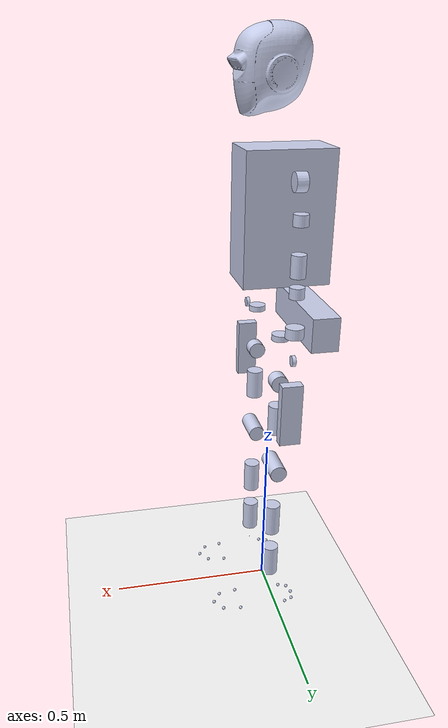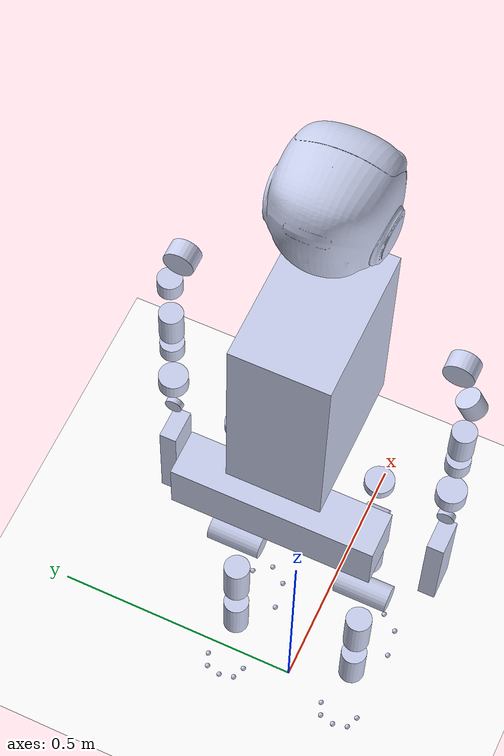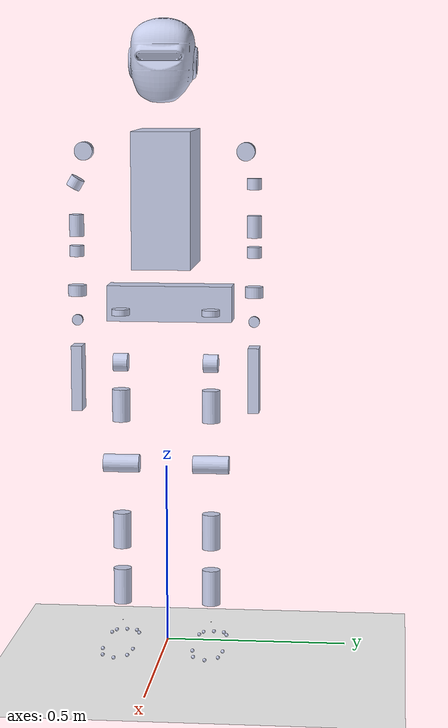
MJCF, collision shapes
<mujoco model="Q1_wo_hand">
  <compiler angle="radian" meshdir="../meshes/"/>
  <default>
    <joint damping="0.001" armature="0.01" frictionloss="0.1"/>
    <default class="collision">
      <geom group="0" rgba="0.2 0.7 0.2 1"/>
    </default>
    <geom condim='4' contype="1" conaffinity="15" solref='0.001 2' friction='1 0 0'/>
  </default>
  <asset>
    <mesh name="pelvis_link" file="pelvis_link.STL"/>
    <mesh name="L_hip_roll_link" file="L_hip_roll_link.STL"/>
    <mesh name="L_hip_yaw_link" file="L_hip_yaw_link.STL"/>
    <mesh name="L_hip_pitch_link" file="L_hip_pitch_link.STL"/>
    <mesh name="L_knee_link" file="L_knee_link.STL"/>
    <mesh name="L_ankle_pitch_link" file="L_ankle_pitch_link.STL"/>
    <mesh name="L_ankle_roll_link" file="L_ankle_roll_link.STL"/>
    <mesh name="R_hip_roll_link" file="R_hip_roll_link.STL"/>
    <mesh name="R_hip_yaw_link" file="R_hip_yaw_link.STL"/>
    <mesh name="R_hip_pitch_link" file="R_hip_pitch_link.STL"/>
    <mesh name="R_knee_link" file="R_knee_link.STL"/>
    <mesh name="R_ankle_pitch_link" file="R_ankle_pitch_link.STL"/>
    <mesh name="R_ankle_roll_link" file="R_ankle_roll_link.STL"/>
    <mesh name="torso_link" file="torso_link.STL"/>
    <mesh name="L_shoulder_pitch_link" file="L_shoulder_pitch_link.STL"/>
    <mesh name="L_shoulder_roll_link" file="L_shoulder_roll_link.STL"/>
    <mesh name="L_shoulder_yaw_link" file="L_shoulder_yaw_link.STL"/>
    <mesh name="L_elbow_link" file="L_elbow_link.STL"/>
    <mesh name="L_forearm_yaw_link" file="L_forearm_yaw_link.STL"/>
    <mesh name="L_wrist_roll_link" file="L_wrist_roll_link.STL"/>
    <mesh name="L_wrist_pitch_link" file="L_wrist_pitch_link.STL"/>
    <mesh name="R_shoulder_pitch_link" file="R_shoulder_pitch_link.STL"/>
    <mesh name="R_shoulder_roll_link" file="R_shoulder_roll_link.STL"/>
    <mesh name="R_shoulder_yaw_link" file="R_shoulder_yaw_link.STL"/>
    <mesh name="R_elbow_link" file="R_elbow_link.STL"/>
    <mesh name="R_forearm_yaw_link" file="R_forearm_yaw_link.STL"/>
    <mesh name="R_wrist_roll_link" file="R_wrist_roll_link.STL"/>
    <mesh name="R_wrist_pitch_link" file="R_wrist_pitch_link.STL"/>
    <mesh name="head_yaw_link" file="head_yaw_link.STL"/>
    <mesh name="head_pitch_link" file="head_pitch_link.STL"/>
  </asset>

  <worldbody>
    <body name="pelvis_link" pos="0 0 0.9968">
      <inertial pos="-0.072571 3.48e-05 -0.055339" quat="0.427329 0.427494 -0.563171 0.563451" mass="8.1798" diaginertia="0.123181 0.103859 0.039797"/>
      <joint name="floating_base_joint" type="free" limited="false" actuatorfrclimited="false"/>
      <geom type="mesh" contype="0" conaffinity="0" group="1" density="0" rgba="0.79216 0.81961 0.93333 1" mesh="pelvis_link"/>
      <geom size="0.04 0.175 0.05" pos="-0.1 0 -0.05" type="box" rgba="0.79216 0.81961 0.93333 1"/>
      <site name="imu" size="0.01" pos="0 0.03 0.2"/>
      <body name="L_hip_roll_link" pos="0.0154 0.125 -0.062997">
        <inertial pos="-0.021809 2.71e-05 0.0049398" quat="-0.00147974 0.685188 -0.00133567 0.728364" mass="1.6267" diaginertia="0.00365822 0.00293049 0.00199039"/>
        <joint name="L_hip_roll_joint" pos="0 0 0" axis="1 0 0" range="-0.2 0.83" actuatorfrcrange="-130 130"/>
        <geom type="mesh" contype="0" conaffinity="0" group="1" density="0" rgba="0.79216 0.81961 0.93333 1" mesh="L_hip_roll_link"/>
        <geom size="0.025 0.0085" type="cylinder" rgba="0.79216 0.81961 0.93333 1"/>
        <body name="L_hip_yaw_link">
          <inertial pos="-0.0005026 -0.0012996 -0.127531" quat="0.706579 -0.0150269 -0.00857499 0.707423" mass="3.6555" diaginertia="0.0142824 0.0121041 0.00825861"/>
          <joint name="L_hip_yaw_joint" pos="0 0 0" axis="0 0 1" range="-0.78 0.78" actuatorfrcrange="-55 55"/>
          <geom type="mesh" contype="0" conaffinity="0" group="1" density="0" rgba="0.79216 0.81961 0.93333 1" mesh="L_hip_yaw_link"/>
          <geom size="0.025 0.02" pos="0 0 -0.14" quat="0.707107 0.707107 0 0" type="cylinder" rgba="0.79216 0.81961 0.93333 1"/>
          <body name="L_hip_pitch_link" pos="0 0 -0.14">
            <inertial pos="0.0103597 0.0011742 -0.135987" quat="0.99972 -0.000456049 -0.0185207 -0.0146979" mass="2.09124" diaginertia="0.0346407 0.0332836 0.00887344"/>
            <joint name="L_hip_pitch_joint" pos="0 0 0" axis="0 1 0" range="-0.89 1.64" actuatorfrcrange="-130 130"/>
            <geom type="mesh" contype="0" conaffinity="0" group="1" density="0" rgba="0.79216 0.81961 0.93333 1" mesh="L_hip_pitch_link"/>
            <geom size="0.025 0.045" pos="0 0 -0.12" type="cylinder" rgba="0.79216 0.81961 0.93333 1"/>
            <body name="L_knee_link" pos="0 0 -0.28502">
              <inertial pos="-0.0003397 0.0004209 -0.127168" quat="0.711774 0.0114952 0.0102471 0.702239" mass="7.50021" diaginertia="0.131416 0.126317 0.0154493"/>
              <joint name="L_knee_joint" pos="0 0 0" axis="0 1 0" range="-0.1 2.3" actuatorfrcrange="-130 130"/>
              <geom type="mesh" contype="0" conaffinity="0" group="1" density="0" rgba="0.79216 0.81961 0.93333 1" mesh="L_knee_link"/>
              <geom size="0.025 0.05" pos="0 0 -0.19" type="cylinder" rgba="0.79216 0.81961 0.93333 1"/>
              <geom size="0.025 0.05" pos="0 0 -0.35" type="cylinder" rgba="0.79216 0.81961 0.93333 1"/>
              <geom size="0.025 0.05" quat="0.707107 0.707107 0 0" type="cylinder" rgba="0.79216 0.81961 0.93333 1"/>
              <body name="L_ankle_pitch_link" pos="0 0 -0.452">
                <inertial pos="-5.11e-05 0 -0.002907" quat="0.707107 0 0 0.707107" mass="0.046" diaginertia="3.9073e-06 3.5529e-06 3.3922e-06"/>
                <joint name="L_ankle_pitch_joint" pos="0 0 0" axis="0 1 0" range="-0.52 0.87" actuatorfrcrange="-66 66"/>
                <geom type="mesh" contype="0" conaffinity="0" group="1" density="0" rgba="0.64706 0.61961 0.58824 1" mesh="L_ankle_pitch_link"/>
                <geom size="0.001 0.0005" type="cylinder" rgba="0.64706 0.61961 0.58824 1"/>
                <body name="L_ankle_roll_link">
                  <inertial pos="0.031127 1.94e-05 -0.03235" quat="-0.000446724 0.749856 -0.000747754 0.661601" mass="0.96277" diaginertia="0.00584802 0.0056095 0.000716878"/>
                  <joint name="L_ankle_roll_joint" pos="0 0 0" axis="1 0 0" range="-0.4363 0.4363" actuatorfrcrange="-66 66"/>
                  <geom type="mesh" contype="0" conaffinity="0" group="1" density="0" rgba="0.79216 0.81961 0.93333 1" mesh="L_ankle_roll_link"/>
                  <geom size="0.005" pos="-0.072 0.029 -0.0517" rgba="0.79216 0.81961 0.93333 1"/>
                  <geom size="0.005" pos="-0.072 -0.029 -0.0517" rgba="0.79216 0.81961 0.93333 1"/>
                  <geom size="0.005" pos="-0.047 0.039 -0.0517" rgba="0.79216 0.81961 0.93333 1"/>
                  <geom size="0.005" pos="-0.047 -0.039 -0.0517" rgba="0.79216 0.81961 0.93333 1"/>
                  <geom size="0.005" pos="-0.079 0 -0.0517" rgba="0.79216 0.81961 0.93333 1"/>
                  <geom size="0.005" pos="0.103 0.042 -0.0517" rgba="0.79216 0.81961 0.93333 1"/>
                  <geom size="0.005" pos="0.103 -0.042 -0.0517" rgba="0.79216 0.81961 0.93333 1"/>
                  <geom size="0.005" pos="0.158 0.034 -0.0517" rgba="0.79216 0.81961 0.93333 1"/>
                  <geom size="0.005" pos="0.158 -0.034 -0.0517" rgba="0.79216 0.81961 0.93333 1"/>
                  <geom size="0.005" pos="0.183 0 -0.0517" rgba="0.79216 0.81961 0.93333 1"/>
                </body>
              </body>
            </body>
          </body>
        </body>
      </body>
      <body name="R_hip_roll_link" pos="0.0154 -0.125 -0.062997">
        <inertial pos="-0.021809 -2.71e-05 0.0049398" quat="0.00147974 0.685188 0.00133567 0.728364" mass="1.6267" diaginertia="0.00365822 0.00293049 0.00199039"/>
        <joint name="R_hip_roll_joint" pos="0 0 0" axis="1 0 0" range="-0.83 0.2" actuatorfrcrange="-130 130"/>
        <geom type="mesh" contype="0" conaffinity="0" group="1" density="0" rgba="0.79216 0.81961 0.93333 1" mesh="R_hip_roll_link"/>
        <geom size="0.025 0.0085" type="cylinder" rgba="0.79216 0.81961 0.93333 1"/>
        <body name="R_hip_yaw_link">
          <inertial pos="-0.0005022 0.0012999 -0.127531" quat="0.707423 -0.00857104 -0.0150113 0.706579" mass="3.65546" diaginertia="0.0142822 0.0121042 0.00825852"/>
          <joint name="R_hip_yaw_joint" pos="0 0 0" axis="0 0 1" range="-0.78 0.78" actuatorfrcrange="-55 55"/>
          <geom type="mesh" contype="0" conaffinity="0" group="1" density="0" rgba="0.79216 0.81961 0.93333 1" mesh="R_hip_yaw_link"/>
          <geom size="0.025 0.02" pos="0 0 -0.14" quat="0.707107 0.707107 0 0" type="cylinder" rgba="0.79216 0.81961 0.93333 1"/>
          <body name="R_hip_pitch_link" pos="0 0 -0.14">
            <inertial pos="0.0103759 -0.0011406 -0.135926" quat="0.999737 0.00046452 -0.0184164 0.0136618" mass="2.09223" diaginertia="0.0346458 0.0332859 0.00887523"/>
            <joint name="R_hip_pitch_joint" pos="0 0 0" axis="0 1 0" range="-0.89 1.64" actuatorfrcrange="-130 130"/>
            <geom type="mesh" contype="0" conaffinity="0" group="1" density="0" rgba="0.79216 0.81961 0.93333 1" mesh="R_hip_pitch_link"/>
            <geom size="0.025 0.045" pos="0 0 -0.12" type="cylinder" rgba="0.79216 0.81961 0.93333 1"/>
            <body name="R_knee_link" pos="0 0 -0.28502">
              <inertial pos="-0.0003539 -0.0004116 -0.127174" quat="0.702392 0.0102481 0.0114683 0.711624" mass="7.50218" diaginertia="0.131434 0.126331 0.0154608"/>
              <joint name="R_knee_joint" pos="0 0 0" axis="0 1 0" range="-0.1 2.3" actuatorfrcrange="-130 130"/>
              <geom type="mesh" contype="0" conaffinity="0" group="1" density="0" rgba="0.79216 0.81961 0.93333 1" mesh="R_knee_link"/>
              <geom size="0.025 0.05" pos="0 0 -0.19" type="cylinder" rgba="0.79216 0.81961 0.93333 1"/>
              <geom size="0.025 0.05" pos="0 0 -0.35" type="cylinder" rgba="0.79216 0.81961 0.93333 1"/>
              <geom size="0.025 0.05" quat="0.707107 0.707107 0 0" type="cylinder" rgba="0.79216 0.81961 0.93333 1"/>
              <body name="R_ankle_pitch_link" pos="0 0 -0.452">
                <inertial pos="-5.1137e-05 0 -0.002907" quat="0.707107 0 0 0.707107" mass="0.046143" diaginertia="3.9072e-06 3.5529e-06 3.3922e-06"/>
                <joint name="R_ankle_pitch_joint" pos="0 0 0" axis="0 1 0" range="-0.52 0.87" actuatorfrcrange="-66 66"/>
                <geom type="mesh" contype="0" conaffinity="0" group="1" density="0" rgba="0.79216 0.81961 0.93333 1" mesh="R_ankle_pitch_link"/>
                <geom size="0.001 0.0005" type="cylinder" rgba="0.79216 0.81961 0.93333 1"/>
                <body name="R_ankle_roll_link">
                  <inertial pos="0.031113 -1.04e-05 -0.032346" quat="0.000459898 0.749836 0.000841181 0.661623" mass="0.96254" diaginertia="0.00584765 0.0056094 0.000716553"/>
                  <joint name="R_ankle_roll_joint" pos="0 0 0" axis="1 0 0" range="-0.4363 0.4363" actuatorfrcrange="-66 66"/>
                  <geom type="mesh" contype="0" conaffinity="0" group="1" density="0" rgba="0.79216 0.81961 0.93333 1" mesh="R_ankle_roll_link"/>
                  <geom size="0.005" pos="-0.072 0.029 -0.0517" rgba="0.79216 0.81961 0.93333 1"/>
                  <geom size="0.005" pos="-0.072 -0.029 -0.0517" rgba="0.79216 0.81961 0.93333 1"/>
                  <geom size="0.005" pos="-0.047 0.039 -0.0517" rgba="0.79216 0.81961 0.93333 1"/>
                  <geom size="0.005" pos="-0.047 -0.039 -0.0517" rgba="0.79216 0.81961 0.93333 1"/>
                  <geom size="0.005" pos="-0.079 0 -0.0517" rgba="0.79216 0.81961 0.93333 1"/>
                  <geom size="0.005" pos="0.103 0.042 -0.0517" rgba="0.79216 0.81961 0.93333 1"/>
                  <geom size="0.005" pos="0.103 -0.042 -0.0517" rgba="0.79216 0.81961 0.93333 1"/>
                  <geom size="0.005" pos="0.158 0.034 -0.0517" rgba="0.79216 0.81961 0.93333 1"/>
                  <geom size="0.005" pos="0.158 -0.034 -0.0517" rgba="0.79216 0.81961 0.93333 1"/>
                  <geom size="0.005" pos="0.183 0 -0.0517" rgba="0.79216 0.81961 0.93333 1"/>
                </body>
              </body>
            </body>
          </body>
        </body>
      </body>
      <body name="torso_link">
        <inertial pos="0.0067502 -0.0038791 0.241647" quat="0.997554 -0.00823724 -0.0136537 0.0680612" mass="19.21" diaginertia="0.361456 0.338674 0.168684"/>
        <joint name="pelvis_joint" pos="0 0 0" axis="0 0 1" range="-1.04 1.04" actuatorfrcrange="-130 130"/>
        <geom type="mesh" contype="0" conaffinity="0" group="1" density="0" rgba="0.79216 0.81961 0.93333 1" mesh="torso_link"/>
        <geom size="0.125 0.08 0.185" pos="-0.01 0 0.25" type="box" rgba="0.79216 0.81961 0.93333 1"/>
        <body name="L_shoulder_pitch_link" pos="0.015442 0.22168 0.37829" quat="0.991445 0.130526 0 0">
          <inertial pos="0.0034819 -0.0052797 1.47e-05" quat="0.706437 0.707251 -0.0191228 -0.0194401" mass="1.35" diaginertia="0.00161569 0.0014304 0.00125011"/>
          <joint name="L_shoulder_pitch_joint" pos="0 0 0" axis="0 1 0" range="-1.48 1.48" actuatorfrcrange="-42 42"/>
          <geom type="mesh" contype="0" conaffinity="0" group="1" density="0" rgba="0.79216 0.81961 0.93333 1" mesh="L_shoulder_pitch_link"/>
          <geom size="0.025 0.015" quat="0.5 0.5 0.5 0.5" type="cylinder" rgba="0.79216 0.81961 0.93333 1"/>
          <body name="L_shoulder_roll_link">
            <inertial pos="0.0001178 0.0018666 -0.056296" quat="0.706855 0.0171153 0.00843154 0.707102" mass="0.55" diaginertia="0.00187871 0.00149694 0.00116175"/>
            <joint name="L_shoulder_roll_joint" pos="0 0 0" axis="1 0 0" range="-0.12 3.17" actuatorfrcrange="-42 42"/>
            <geom type="mesh" contype="0" conaffinity="0" group="1" density="0" rgba="0.79216 0.81961 0.93333 1" mesh="L_shoulder_roll_link"/>
            <geom size="0.02 0.015" pos="0 -0.001 -0.09" quat="0.991445 -0.130526 0 0" type="cylinder" rgba="0.79216 0.81961 0.93333 1"/>
            <body name="L_shoulder_yaw_link" pos="0 -0.043708 -0.2504" quat="0.991445 -0.130526 0 0">
              <inertial pos="0.0030369 -0.000691 0.048579" quat="0.99942 -0.000396665 -0.0324068 -0.0104301" mass="1.95" diaginertia="0.00591975 0.00576114 0.00160911"/>
              <joint name="L_shoulder_yaw_joint" pos="0 0 0" axis="0 0 1" range="-1.69 1.69" actuatorfrcrange="-23 23"/>
              <geom quat="0.707107 0 0 0.707107" type="mesh" contype="0" conaffinity="0" group="1" density="0" rgba="0.79216 0.81961 0.93333 1" mesh="L_shoulder_yaw_link"/>
              <geom size="0.02 0.03" pos="0 0 0.05" quat="0.707107 0 0 0.707107" type="cylinder" rgba="0.79216 0.81961 0.93333 1"/>
              <body name="L_elbow_link">
                <inertial pos="-0.0013729 0.0051926 -0.01857" quat="0.423804 0.564792 0.429118 0.563256" mass="0.25" diaginertia="0.00058212 0.000497093 0.000311188"/>
                <joint name="L_elbow_joint" pos="0 0 0" axis="0 1 0" range="-1.95 0.87" actuatorfrcrange="-23 23"/>
                <geom quat="0.707107 0 0 0.707107" type="mesh" contype="0" conaffinity="0" group="1" density="0" rgba="0.79216 0.81961 0.93333 1" mesh="L_elbow_link"/>
                <geom size="0.02 0.015" pos="0 0 -0.02" quat="0.707107 0 0 0.707107" type="cylinder" rgba="0.79216 0.81961 0.93333 1"/>
                <body name="L_forearm_yaw_link" pos="0 0 -0.211">
                  <inertial pos="0.0014016 0.0001246 0.09169" quat="0.714403 -0.0130686 -0.00952772 0.699548" mass="1.05" diaginertia="0.0018221 0.00166357 0.000734625"/>
                  <joint name="L_forearm_yaw_joint" pos="0 0 0" axis="0 0 1" range="-1.53 1.53" actuatorfrcrange="-8.3 8.3"/>
                  <geom type="mesh" contype="0" conaffinity="0" group="1" density="0" rgba="0.79216 0.81961 0.93333 1" mesh="L_forearm_yaw_link"/>
                  <geom size="0.025 0.015" pos="0 0 0.082" type="cylinder" rgba="0.79216 0.81961 0.93333 1"/>
                  <body name="L_wrist_roll_link">
                    <inertial pos="0 -0.0047393 -2.85e-05" quat="0.501848 0.498145 -0.498145 0.501848" mass="0.25" diaginertia="8.30015e-05 8.23e-05 5.59985e-05"/>
                    <joint name="L_wrist_roll_joint" pos="0 0 0" axis="1 0 0" range="-2.3 1.39" actuatorfrcrange="-8.3 8.3"/>
                    <geom type="mesh" contype="0" conaffinity="0" group="1" density="0" rgba="0.79216 0.81961 0.93333 1" mesh="L_wrist_roll_link"/>
                    <geom size="0.015 0.005" quat="0.707107 0 0.707107 0" type="cylinder" rgba="0.79216 0.81961 0.93333 1"/>
                    <body name="L_wrist_pitch_link">
                      <inertial pos="8.81e-05 0.0081922 -0.051309" quat="0.937586 -0.247077 -0.0627179 -0.236544" mass="0.16" diaginertia="0.000145347 0.000144694 4.01586e-05"/>
                      <joint name="L_wrist_pitch_joint" pos="0 0 0" axis="0 1 0" range="-1.78 1.67" actuatorfrcrange="-8.3 8.3"/>
                      <geom type="mesh" contype="0" conaffinity="0" group="1" density="0" rgba="0.79216 0.81961 0.93333 1" mesh="L_wrist_pitch_link"/>
                      <geom size="0.03 0.015 0.09" pos="0 0 -0.16" type="box" rgba="0.79216 0.81961 0.93333 1"/>
                    </body>
                  </body>
                </body>
              </body>
            </body>
          </body>
        </body>
        <body name="R_shoulder_pitch_link" pos="0.015442 -0.22168 0.37829" quat="0.991445 -0.130526 0 0">
          <inertial pos="0.003482 0.0052769 1.44e-05" quat="0.707267 0.706421 0.0196245 0.0189276" mass="1.35" diaginertia="0.00161579 0.0014303 0.00125011"/>
          <joint name="R_shoulder_pitch_joint" pos="0 0 0" axis="0 1 0" range="-1.48 1.48" actuatorfrcrange="-42 42"/>
          <geom type="mesh" contype="0" conaffinity="0" group="1" density="0" rgba="0.79216 0.81961 0.93333 1" mesh="R_shoulder_pitch_link"/>
          <geom size="0.025 0.015" quat="0.5 0.5 0.5 0.5" type="cylinder" rgba="0.79216 0.81961 0.93333 1"/>
          <body name="R_shoulder_roll_link">
            <inertial pos="0.00012 -0.0018541 -0.0563" quat="0.707287 0.00842865 0.0171107 0.70667" mass="0.55" diaginertia="0.00187891 0.00149704 0.00116185"/>
            <joint name="R_shoulder_roll_joint" pos="0 0 0" axis="1 0 0" range="-3.17 0.12" actuatorfrcrange="-42 42"/>
            <geom type="mesh" contype="0" conaffinity="0" group="1" density="0" rgba="0.79216 0.81961 0.93333 1" mesh="R_shoulder_roll_link"/>
            <geom size="0.02 0.015" pos="0 -0.001 -0.09" quat="0.991445 -0.130526 0 0" type="cylinder" rgba="0.79216 0.81961 0.93333 1"/>
            <body name="R_shoulder_yaw_link" pos="0 0.043708 -0.2504" quat="0.991445 0.130526 0 0">
              <inertial pos="0.0029659 0.0006795 0.04866" quat="0.999412 0.000350697 -0.0324643 0.0110351" mass="1.95" diaginertia="0.00592012 0.00576173 0.00160934"/>
              <joint name="R_shoulder_yaw_joint" pos="0 0 0" axis="0 0 1" range="-1.69 1.69" actuatorfrcrange="-23 23"/>
              <geom quat="0.707107 0 0 -0.707107" type="mesh" contype="0" conaffinity="0" group="1" density="0" rgba="0.79216 0.81961 0.93333 1" mesh="R_shoulder_yaw_link"/>
              <geom size="0.02 0.03" pos="0 0 0.05" quat="0.707107 0 0 0.707107" type="cylinder" rgba="0.79216 0.81961 0.93333 1"/>
              <body name="R_elbow_link">
                <inertial pos="-0.0013805 -0.0051935 -0.018572" quat="0.563322 0.429032 0.564858 0.423716" mass="0.25" diaginertia="0.000582027 0.000497085 0.000311188"/>
                <joint name="R_elbow_joint" pos="0 0 0" axis="0 1 0" range="-0.87 1.95" actuatorfrcrange="-23 23"/>
                <geom quat="0.707107 0 0 -0.707107" type="mesh" contype="0" conaffinity="0" group="1" density="0" rgba="0.79216 0.81961 0.93333 1" mesh="R_elbow_link"/>
                <geom size="0.02 0.015" pos="0 0 -0.02" quat="0.707107 0 0 0.707107" type="cylinder" rgba="0.79216 0.81961 0.93333 1"/>
                <body name="R_forearm_yaw_link" pos="0 0 -0.211">
                  <inertial pos="0.0014 -0.0001237 0.09169" quat="0.699552 -0.00953096 -0.0130726 0.714398" mass="1.05" diaginertia="0.001822 0.00166338 0.000734725"/>
                  <joint name="R_forearm_yaw_joint" pos="0 0 0" axis="0 0 1" range="-1.53 1.53" actuatorfrcrange="-8.3 8.3"/>
                  <geom type="mesh" contype="0" conaffinity="0" group="1" density="0" rgba="0.79216 0.81961 0.93333 1" mesh="R_forearm_yaw_link"/>
                  <geom size="0.025 0.015" pos="0 0 0.082" type="cylinder" rgba="0.79216 0.81961 0.93333 1"/>
                  <body name="R_wrist_roll_link">
                    <inertial pos="0 0.0047393 -2.85e-05" quat="0.498145 0.501848 -0.501848 0.498145" mass="0.25" diaginertia="8.30015e-05 8.23e-05 5.59985e-05"/>
                    <joint name="R_wrist_roll_joint" pos="0 0 0" axis="1 0 0" range="-1.39 2.3" actuatorfrcrange="-8.3 8.3"/>
                    <geom type="mesh" contype="0" conaffinity="0" group="1" density="0" rgba="0.79216 0.81961 0.93333 1" mesh="R_wrist_roll_link"/>
                    <geom size="0.015 0.005" quat="0.707107 0 0.707107 0" type="cylinder" rgba="0.79216 0.81961 0.93333 1"/>
                    <body name="R_wrist_pitch_link">
                      <inertial pos="8.81e-05 -0.0081922 -0.051309" quat="0.937586 0.247077 -0.0627179 0.236544" mass="0.16" diaginertia="0.000145347 0.000144694 4.01586e-05"/>
                      <joint name="R_wrist_pitch_joint" pos="0 0 0" axis="0 1 0" range="-1.78 1.67" actuatorfrcrange="-8.3 8.3"/>
                      <geom type="mesh" contype="0" conaffinity="0" group="1" density="0" rgba="0.79216 0.81961 0.93333 1" mesh="R_wrist_pitch_link"/>
                      <geom size="0.03 0.015 0.09" pos="0 0 -0.16" type="box" rgba="0.79216 0.81961 0.93333 1"/>
                    </body>
                  </body>
                </body>
              </body>
            </body>
          </body>
        </body>
        <body name="head_yaw_link" pos="0.026942 0 0.61493">
          <inertial pos="9.42e-05 -0.0015802 -0.0048308" quat="0.708141 0.70596 -0.00896168 0.00879997" mass="0.8" diaginertia="0.00237972 0.0023519 0.000501882"/>
          <joint name="head_yaw_joint" pos="0 0 0" axis="0 0 1" range="-1.57 1.57" actuatorfrcrange="-2.52 2.52"/>
          <geom type="mesh" contype="0" conaffinity="0" group="1" density="0" rgba="0.79216 0.81961 0.93333 1" mesh="head_yaw_link"/>
          <geom type="mesh" rgba="0.79216 0.81961 0.93333 1" mesh="head_yaw_link"/>
          <body name="head_pitch_link">
            <inertial pos="0.021366 0.0020556 0.027951" quat="0.195821 0.788624 0.279468 0.511492" mass="0.72904" diaginertia="0.00447361 0.00437721 0.00318018"/>
            <joint name="head_pitch_joint" pos="0 0 0" axis="0 1 0" range="-0.38 0.33" actuatorfrcrange="-2.52 2.52"/>
            <geom type="mesh" contype="0" conaffinity="0" group="1" density="0" rgba="0.79216 0.81961 0.93333 1" mesh="head_pitch_link"/>
            <geom type="mesh" rgba="0.79216 0.81961 0.93333 1" mesh="head_pitch_link"/>
          </body>
        </body>
      </body>
    </body>
  </worldbody>

  <actuator>
    <motor name="L_hip_roll_joint" joint="L_hip_roll_joint" ctrlrange="-130 130"/>
    <motor name="L_hip_yaw_joint" joint="L_hip_yaw_joint" ctrlrange="-55 55"/>
    <motor name="L_hip_pitch_joint" joint="L_hip_pitch_joint" ctrlrange="-130 130"/>
    <motor name="L_knee_joint" joint="L_knee_joint" ctrlrange="-130 130"/>
    <motor name="L_ankle_pitch_joint" joint="L_ankle_pitch_joint" ctrlrange="-66 66"/>
    <motor name="L_ankle_roll_joint" joint="L_ankle_roll_joint" ctrlrange="-66 66"/>

    <motor name="R_hip_roll_joint" joint="R_hip_roll_joint" ctrlrange="-130 130"/>
    <motor name="R_hip_yaw_joint" joint="R_hip_yaw_joint" ctrlrange="-55 55"/>
    <motor name="R_hip_pitch_joint" joint="R_hip_pitch_joint" ctrlrange="-130 130"/>
    <motor name="R_knee_joint" joint="R_knee_joint" ctrlrange="-130 130"/>
    <motor name="R_ankle_pitch_joint" joint="R_ankle_pitch_joint" ctrlrange="-66 66"/>
    <motor name="R_ankle_roll_joint" joint="R_ankle_roll_joint" ctrlrange="-66 66"/>

    <motor name="pelvis_joint" joint="pelvis_joint" ctrlrange="-130 130"/>

    <motor name="L_shoulder_pitch_joint" joint="L_shoulder_pitch_joint" ctrlrange="-42 42"/>
    <motor name="L_shoulder_roll_joint" joint="L_shoulder_roll_joint" ctrlrange="-42 42"/>
    <motor name="L_shoulder_yaw_joint" joint="L_shoulder_yaw_joint" ctrlrange="-23 23"/>
    <motor name="L_elbow_joint" joint="L_elbow_joint" ctrlrange="-23 23"/>
    <motor name="L_forearm_yaw_joint" joint="L_forearm_yaw_joint" ctrlrange="-8.3 8.3"/>
    <motor name="L_wrist_roll_joint" joint="L_wrist_roll_joint" ctrlrange="-3.3 3.3"/>
    <motor name="L_wrist_pitch_joint" joint="L_wrist_pitch_joint" ctrlrange="-3.3 3.3"/>

    <motor name="R_shoulder_pitch_joint" joint="R_shoulder_pitch_joint" ctrlrange="-42 42"/>
    <motor name="R_shoulder_roll_joint" joint="R_shoulder_roll_joint" ctrlrange="-42 42"/>
    <motor name="R_shoulder_yaw_joint" joint="R_shoulder_yaw_joint" ctrlrange="-23 23"/>
    <motor name="R_elbow_joint" joint="R_elbow_joint" ctrlrange="-23 23"/>
    <motor name="R_forearm_yaw_joint" joint="R_forearm_yaw_joint" ctrlrange="-8.3 8.3"/>
    <motor name="R_wrist_roll_joint" joint="R_wrist_roll_joint" ctrlrange="-3.3 3.3"/>
    <motor name="R_wrist_pitch_joint" joint="R_wrist_pitch_joint" ctrlrange="-3.3 3.3"/>

    <motor name="head_yaw_joint" joint="head_yaw_joint" ctrlrange="-2.52 2.52"/>
    <motor name="head_pitch_joint" joint="head_pitch_joint" ctrlrange="-1.26 1.26"/>

  </actuator>

  <sensor>
    <gyro name="imu-angular-velocity" site="imu" noise="5e-4" cutoff="34.9"/>
    <accelerometer name="imu-linear-acceleration" site="imu" noise="1e-2" cutoff="157"/>
  </sensor>
  <!-- setup scene -->
  <statistic center="1.0 0.7 1.0" extent="0.8" />
  <visual>
    <headlight diffuse="0.6 0.6 0.6" ambient="0.1 0.1 0.1" specular="0.9 0.9 0.9" />
    <rgba haze="0.15 0.25 0.35 1" />
    <global azimuth="-140" elevation="-20" offwidth="2080" offheight="1170" />
  </visual>
  <asset>
    <texture type="skybox" builtin="gradient" rgb1="1 1 1" rgb2="1 1 1" width="800" height="800" />
    <texture type="2d" name="groundplane" builtin="checker" mark="edge" rgb1="1 1 1" rgb2="1 1 1" markrgb="0 0 0" width="300" height="300" />
    <material name="groundplane" texture="groundplane" texuniform="true" texrepeat="5 5" reflectance="0" />
    <texture type="skybox" builtin="gradient" rgb1=".4 .5 .6" rgb2="0 0 0" width="100" height="100" />
    <texture builtin="flat" height="1278" mark="cross" markrgb="1 1 1" name="texgeom" random="0.01" rgb1="0.8 0.6 0.4" rgb2="0.8 0.6 0.4" type="cube" width="127" />
    <texture name="texplane" builtin="checker" height="512" width="512" rgb1=".2 .3 .4" rgb2=".1 .15 .2" type="2d" />
    <material name="MatPlane" reflectance="0.5" shininess="0.01" specular="0.1" texrepeat="1 1" texture="texplane" texuniform="true" />
    <material name="geom" texture="texgeom" texuniform="true" />
  </asset>
  <worldbody>
    <geom name="floor" size="0 0 0.01" type="plane" material="groundplane" contype="1" conaffinity="0" priority="1" friction="0.6" condim="3" />
    <geom name="floor1" size="0 0 0.01" type="plane" material="groundplane" contype="0" conaffinity="0" priority="1" friction="0.6" condim="3"  group="1" />
    <light diffuse=".5 .5 .5" pos="-3 -3 5" dir="3 3 -5" castshadow="true" />
  </worldbody>
</mujoco>
